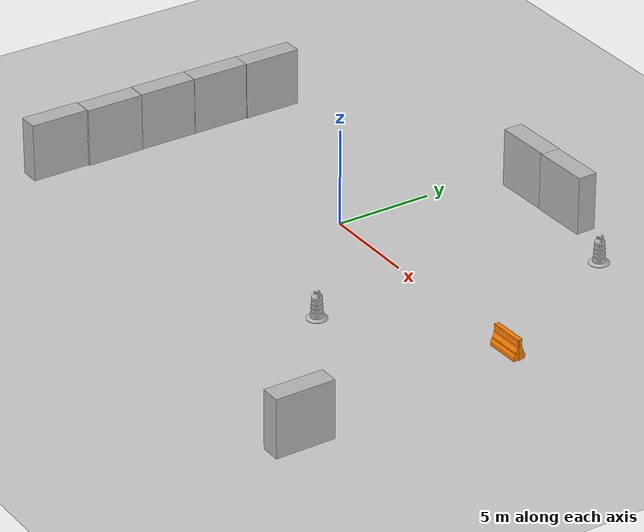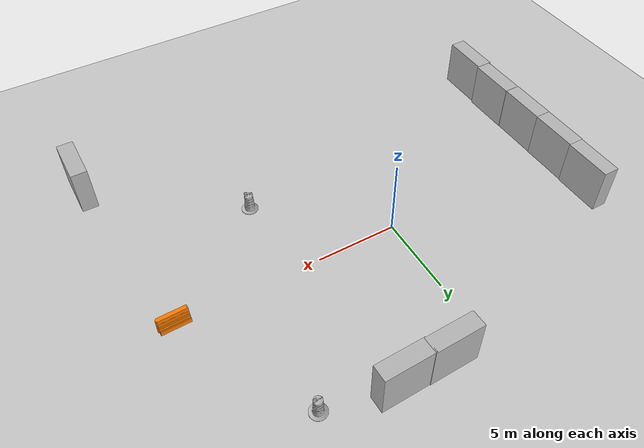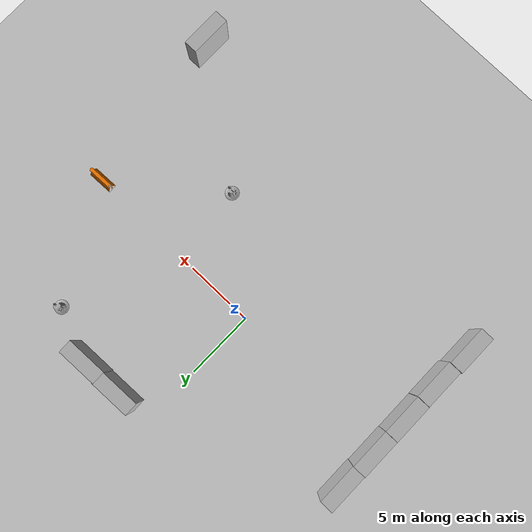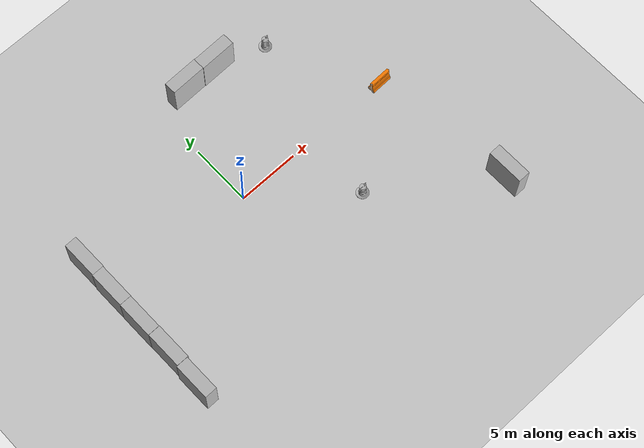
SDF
<sdf version="1.7">
 <world name="default">
  <light name="sun" type="directional">
   <pose>0 0 10 0 -0 0</pose>
   <diffuse>0.8 0.8 0.8 1</diffuse>
   <specular>0.2 0.2 0.2 1</specular>
   <attenuation>
    <range>1000</range>
    <constant>0.9</constant>
    <linear>0.01</linear>
    <quadratic>0.001</quadratic>
   </attenuation>
   <direction>-0.5 0.1 -0.9</direction>
   <spot><inner_angle>0</inner_angle><outer_angle>0</outer_angle><falloff>0</falloff></spot>
  </light>
  <model name="ground_plane">
   <static>1</static>
   <link name="link">
    <collision name="collision">
     <geometry><plane><normal>0 0 1</normal><size>100 100</size></plane></geometry>
     <surface><friction><ode><mu>100</mu><mu2>50</mu2></ode></friction></surface>
    </collision>
    <visual name="visual">
     <cast_shadows>0</cast_shadows>
     <geometry><plane><normal>0 0 1</normal><size>100 100</size></plane></geometry>
     <material>
      <script><uri>file://media/materials/scripts/gazebo.material</uri><name>Gazebo/Grey</name></script>
     </material>
    </visual>
   </link>
  </model>
  <gravity>0 0 -9.8</gravity>
  <magnetic_field>6e-06 2.3e-05 -4.2e-05</magnetic_field>
  <atmosphere type="adiabatic"/>
  <physics type="ode">
   <max_step_size>0.001</max_step_size>
   <real_time_factor>1</real_time_factor>
   <real_time_update_rate>1000</real_time_update_rate>
  </physics>
  <scene><ambient>0.4 0.4 0.4 1</ambient><background>0.7 0.7 0.7 1</background><shadows>1</shadows></scene>
  <spherical_coordinates>
   <surface_model>EARTH_WGS84</surface_model>
   <latitude_deg>0</latitude_deg>
   <longitude_deg>0</longitude_deg>
   <elevation>0</elevation>
   <heading_deg>0</heading_deg>
  </spherical_coordinates>
  <model name="Construction Barrel">
   <link name="link">
    <inertial>
     <pose>0 0 0.4 0 -0 0</pose>
     <mass>500</mass>
     <inertia><ixx>51.2096</ixx><iyy>51.2096</iyy><izz>25</izz><ixy>0</ixy><ixz>0</ixz><iyz>0</iyz></inertia>
    </inertial>
    <collision name="collision">
     <geometry><mesh><uri>model://construction_barrel/meshes/construction_barrel.dae</uri></mesh></geometry>
    </collision>
    <visual name="visual">
     <geometry><mesh><uri>model://construction_barrel/meshes/construction_barrel.dae</uri></mesh></geometry>
    </visual>
   </link>
   <pose>9.60503 8.12904 -2e-06 4e-06 7e-06 -0.000114</pose>
  </model>
  <model name="brick_box_3x1x3">
   <static>1</static>
   <link name="chassis">
    <pose>0 0 1.5 0 -0 0</pose>
    <collision name="collision"><geometry><box><size>3 1 3</size></box></geometry></collision>
    <visual name="visual">
     <geometry><mesh><uri>model://brick_box_3x1x3/meshes/simple_box.dae</uri><scale>3 1 3</scale></mesh></geometry>
     <material>
      <script>
       <uri>model://brick_box_3x1x3/materials/scripts</uri>
       <uri>model://brick_box_3x1x3/materials/textures</uri>
       <name>BrickBox/Diffuse</name>
      </script>
     </material>
    </visual>
   </link>
   <pose>15.1799 -12.0053 0 0 0 -1.56664</pose>
  </model>
  <model name="brick_box_3x1x3_clone_clone_0">
   <static>1</static>
   <link name="chassis">
    <pose>0 0 1.5 0 -0 0</pose>
    <collision name="collision"><geometry><box><size>3 1 3</size></box></geometry></collision>
    <visual name="visual">
     <geometry><mesh><uri>model://brick_box_3x1x3/meshes/simple_box.dae</uri><scale>3 1 3</scale></mesh></geometry>
     <material>
      <script>
       <uri>model://brick_box_3x1x3/materials/scripts</uri>
       <uri>model://brick_box_3x1x3/materials/textures</uri>
       <name>BrickBox/Diffuse</name>
      </script>
     </material>
    </visual>
   </link>
   <pose>2.61063 9.18481 0.073975 0 -0 0.025796</pose>
  </model>
  <model name="drc_practice_organge_jersey_barrier">
   <static>1</static>
   <link name="link">
    <visual name="visual">
     <geometry>
      <mesh><uri>model://drc_practice_orange_jersey_barrier/meshes/jersey_barrier.dae</uri></mesh>
     </geometry>
    </visual>
    <collision name="collision">
     <geometry>
      <mesh><uri>model://drc_practice_orange_jersey_barrier/meshes/jersey_barrier.dae</uri></mesh>
     </geometry>
    </collision>
   </link>
   <pose>13.8069 -0.052666 0 0 -0 1.60186</pose>
  </model>
  <model name="brick_box_3x1x3_clone_clone_0_clone">
   <static>1</static>
   <link name="chassis">
    <pose>0 0 1.5 0 -0 0</pose>
    <collision name="collision"><geometry><box><size>3 1 3</size></box></geometry></collision>
    <visual name="visual">
     <geometry><mesh><uri>model://brick_box_3x1x3/meshes/simple_box.dae</uri><scale>3 1 3</scale></mesh></geometry>
     <material>
      <script>
       <uri>model://brick_box_3x1x3/materials/scripts</uri>
       <uri>model://brick_box_3x1x3/materials/textures</uri>
       <name>BrickBox/Diffuse</name>
      </script>
     </material>
    </visual>
   </link>
   <pose>5.50693 9.22457 0.073975 0 -0 0.025796</pose>
  </model>
  <model name="Construction Barrel_clone">
   <link name="link">
    <inertial>
     <pose>0 0 0.4 0 -0 0</pose>
     <mass>500</mass>
     <inertia><ixx>51.2096</ixx><iyy>51.2096</iyy><izz>25</izz><ixy>0</ixy><ixz>0</ixz><iyz>0</iyz></inertia>
    </inertial>
    <collision name="collision">
     <geometry><mesh><uri>model://construction_barrel/meshes/construction_barrel.dae</uri></mesh></geometry>
    </collision>
    <visual name="visual">
     <geometry><mesh><uri>model://construction_barrel/meshes/construction_barrel.dae</uri></mesh></geometry>
    </visual>
   </link>
   <pose>6.71132 -5.64001 -2e-06 4e-06 7e-06 -0.000116</pose>
  </model>
  <model name="brick_box_3x1x3_clone_clone_1">
   <static>1</static>
   <link name="chassis">
    <pose>0 0 1.5 0 -0 0</pose>
    <collision name="collision"><geometry><box><size>3 1 3</size></box></geometry></collision>
    <visual name="visual">
     <geometry><mesh><uri>model://brick_box_3x1x3/meshes/simple_box.dae</uri><scale>3 1 3</scale></mesh></geometry>
     <material>
      <script>
       <uri>model://brick_box_3x1x3/materials/scripts</uri>
       <uri>model://brick_box_3x1x3/materials/textures</uri>
       <name>BrickBox/Diffuse</name>
      </script>
     </material>
    </visual>
   </link>
   <pose>-11.9386 3.44366 0 0 0 -1.56664</pose>
  </model>
  <model name="brick_box_3x1x3_clone_clone_2">
   <static>1</static>
   <link name="chassis">
    <pose>0 0 1.5 0 -0 0</pose>
    <collision name="collision"><geometry><box><size>3 1 3</size></box></geometry></collision>
    <visual name="visual">
     <geometry><mesh><uri>model://brick_box_3x1x3/meshes/simple_box.dae</uri><scale>3 1 3</scale></mesh></geometry>
     <material>
      <script>
       <uri>model://brick_box_3x1x3/materials/scripts</uri>
       <uri>model://brick_box_3x1x3/materials/textures</uri>
       <name>BrickBox/Diffuse</name>
      </script>
     </material>
    </visual>
   </link>
   <pose>-11.9674 0.449041 0 0 0 -1.56664</pose>
  </model>
  <model name="brick_box_3x1x3_clone_clone_3">
   <static>1</static>
   <link name="chassis">
    <pose>0 0 1.5 0 -0 0</pose>
    <collision name="collision"><geometry><box><size>3 1 3</size></box></geometry></collision>
    <visual name="visual">
     <geometry><mesh><uri>model://brick_box_3x1x3/meshes/simple_box.dae</uri><scale>3 1 3</scale></mesh></geometry>
     <material>
      <script>
       <uri>model://brick_box_3x1x3/materials/scripts</uri>
       <uri>model://brick_box_3x1x3/materials/textures</uri>
       <name>BrickBox/Diffuse</name>
      </script>
     </material>
    </visual>
   </link>
   <pose>-11.965 -2.55577 0 0 0 -1.56664</pose>
  </model>
  <model name="brick_box_3x1x3_clone_clone_4">
   <static>1</static>
   <link name="chassis">
    <pose>0 0 1.5 0 -0 0</pose>
    <collision name="collision"><geometry><box><size>3 1 3</size></box></geometry></collision>
    <visual name="visual">
     <geometry><mesh><uri>model://brick_box_3x1x3/meshes/simple_box.dae</uri><scale>3 1 3</scale></mesh></geometry>
     <material>
      <script>
       <uri>model://brick_box_3x1x3/materials/scripts</uri>
       <uri>model://brick_box_3x1x3/materials/textures</uri>
       <name>BrickBox/Diffuse</name>
      </script>
     </material>
    </visual>
   </link>
   <pose>-11.9328 -5.57023 0 0 0 -1.56664</pose>
  </model>
  <model name="brick_box_3x1x3_clone_clone_5">
   <static>1</static>
   <link name="chassis">
    <pose>0 0 1.5 0 -0 0</pose>
    <collision name="collision"><geometry><box><size>3 1 3</size></box></geometry></collision>
    <visual name="visual">
     <geometry><mesh><uri>model://brick_box_3x1x3/meshes/simple_box.dae</uri><scale>3 1 3</scale></mesh></geometry>
     <material>
      <script>
       <uri>model://brick_box_3x1x3/materials/scripts</uri>
       <uri>model://brick_box_3x1x3/materials/textures</uri>
       <name>BrickBox/Diffuse</name>
      </script>
     </material>
    </visual>
   </link>
   <pose>-12.0159 -8.58581 0 0 0 -1.56664</pose>
  </model>
 </world>
</sdf>
